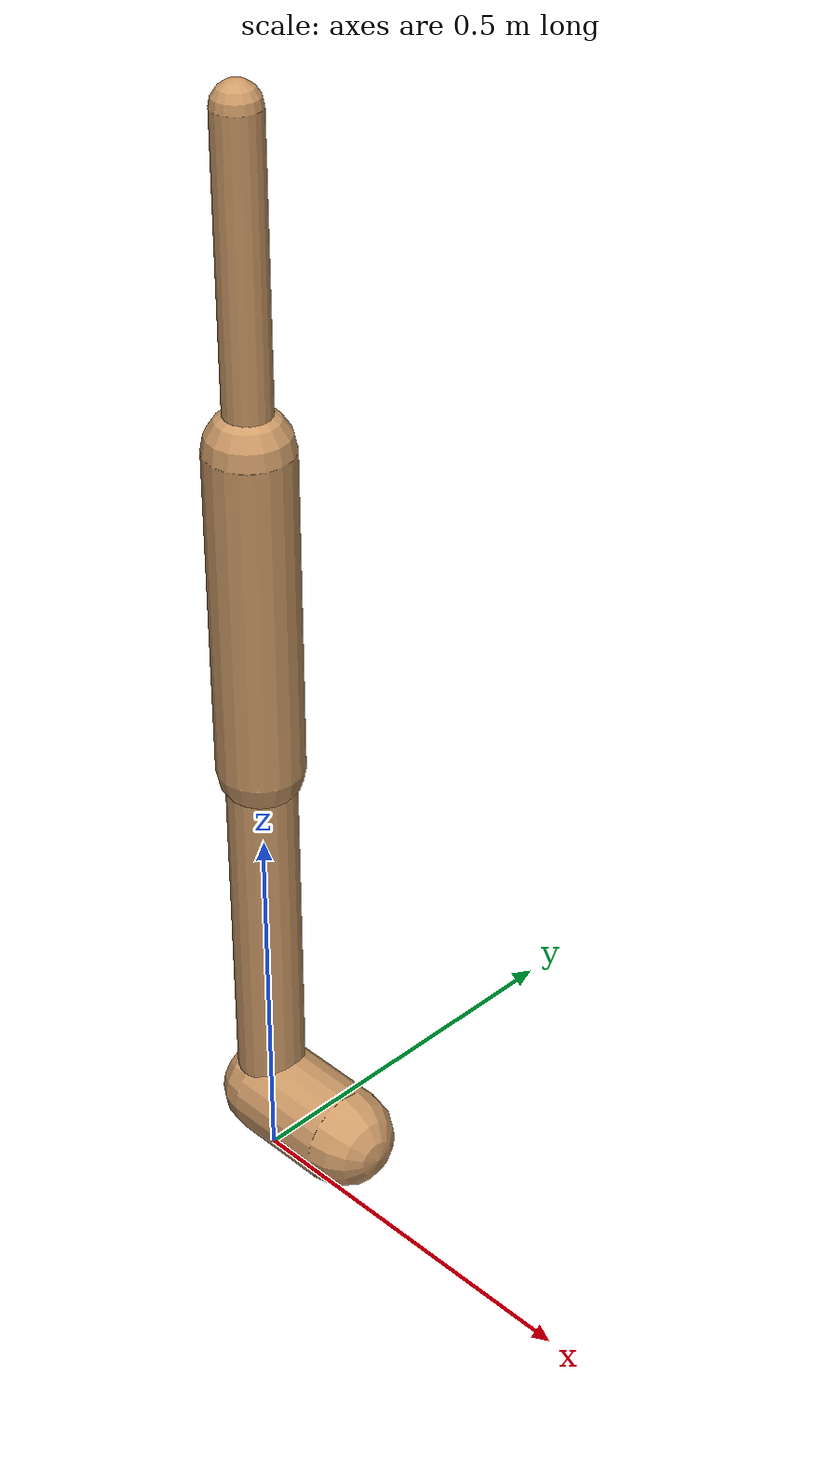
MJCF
<mujoco model="walker2d">
  <compiler angle="degree" coordinate="global" inertiafromgeom="true" />
  <default>
    <joint armature="0.01" damping=".1" limited="true" />
    <geom conaffinity="0" condim="3" contype="1" density="1000" friction="0.8 .1 .1" rgba="0.8 0.6 .4 1" />
  </default>
  <option integrator="RK4" timestep="0.002" />
  <worldbody>

    <body name="torso" pos="0 0 -0.03583584798965214">
      <joint armature="0" axis="1 0 0" damping="0" limited="false" name="ignorex" pos="0 0 0" stiffness="0" type="slide" />
      <joint armature="0" axis="0 0 1" damping="0" limited="false" name="ignorez" pos="0 0 0" ref="1.25" stiffness="0" type="slide" />
      <joint armature="0" axis="0 1 0" damping="0" limited="false" name="ignorey" pos="0 0 0" stiffness="0" type="hinge" />
      <geom fromto="0 0 1.45 0 0 1.05" name="torso_geom" size="0.02961656415753096" type="capsule" />
      <body name="thigh">
        <joint axis="0 -1 0" name="thigh_joint" pos="0 0 1.05" range="-150 0" type="hinge" />
        <geom fromto="0.0 0.0 1.05 0.0 0.0 0.6169748753635194" name="thigh_geom" size="0.055038315236671825" type="capsule" />
        <body name="leg" pos="0.0 0.0 0.01697487536351938">
          <joint axis="0 -1 0" name="leg_joint" pos="0 0 0.6" range="-150 0" type="hinge" />
          <geom fromto="0.0 0.0 0.6 0.0 0.0 0.11886097262613271" name="leg_geom" size="0.04403065218933746" type="capsule" />
          <body name="foot" pos="0.0 0.0 0.018860972626132705">
            <joint axis="0 -1 0" name="foot_joint" pos="0 0 0.1" range="-45 45" type="hinge" />
            <geom fromto="0.0 0.0 0.1 0.13656714979473247 0.0 0.1" name="foot_geom" size="0.06451476706806157" type="capsule" />
          </body>
        </body>
      </body>

      <body name="thigh_left">
        <joint axis="0 -1 0" name="thigh_left_joint" pos="0 0 1.05" range="-150 0" type="hinge" />
        <geom fromto="0.0 0.0 1.05 0.0 0.0 0.6169748753635194" name="thigh_left_geom" rgba=".7 .3 .6 1" size="0.055038315236671825" type="capsule" />
        <body name="leg_left" pos="0.0 0.0 0.01697487536351938">
          <joint axis="0 -1 0" name="leg_left_joint" pos="0 0 0.6" range="-150 0" type="hinge" />
          <geom fromto="0.0 0.0 0.6 0.0 0.0 0.11886097262613271" name="leg_left_geom" rgba=".7 .3 .6 1" size="0.04403065218933746" type="capsule" />
          <body name="foot_left" pos="0.0 0.0 0.018860972626132705">
            <joint axis="0 -1 0" name="foot_left_joint" pos="0 0 0.1" range="-45 45" type="hinge" />
            <geom fromto="0.0 0.0 0.1 0.13656714979473247 0.0 0.1" name="foot_left_geom" rgba=".7 .3 .6 1" size="0.06451476706806157" type="capsule" />
          </body>
        </body>
      </body>
    </body>
  </worldbody>
  <actuator>

    <motor ctrllimited="true" ctrlrange="-1.0 1.0" gear="100" joint="thigh_joint" />
    <motor ctrllimited="true" ctrlrange="-1.0 1.0" gear="100" joint="leg_joint" />
    <motor ctrllimited="true" ctrlrange="-1.0 1.0" gear="100" joint="foot_joint" />
    <motor ctrllimited="true" ctrlrange="-1.0 1.0" gear="100" joint="thigh_left_joint" />
    <motor ctrllimited="true" ctrlrange="-1.0 1.0" gear="100" joint="leg_left_joint" />
    <motor ctrllimited="true" ctrlrange="-1.0 1.0" gear="100" joint="foot_left_joint" />

  </actuator>
</mujoco>
